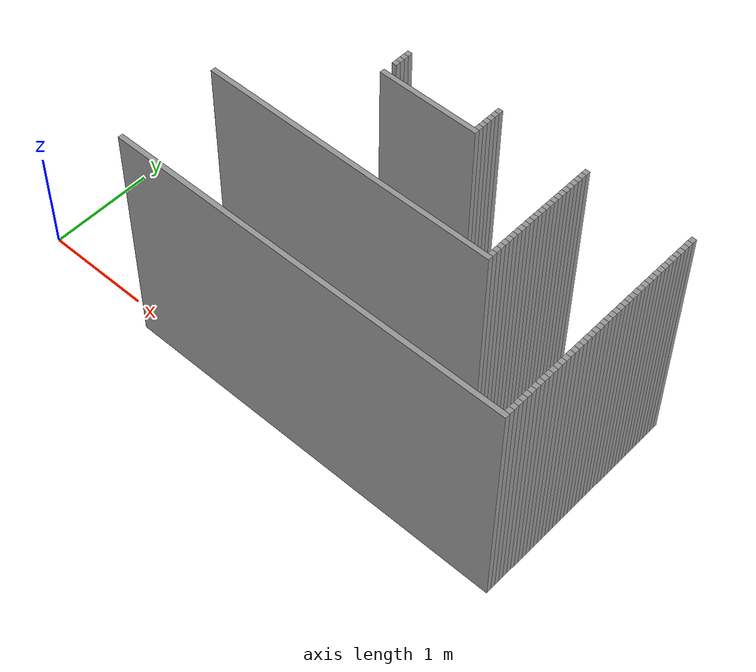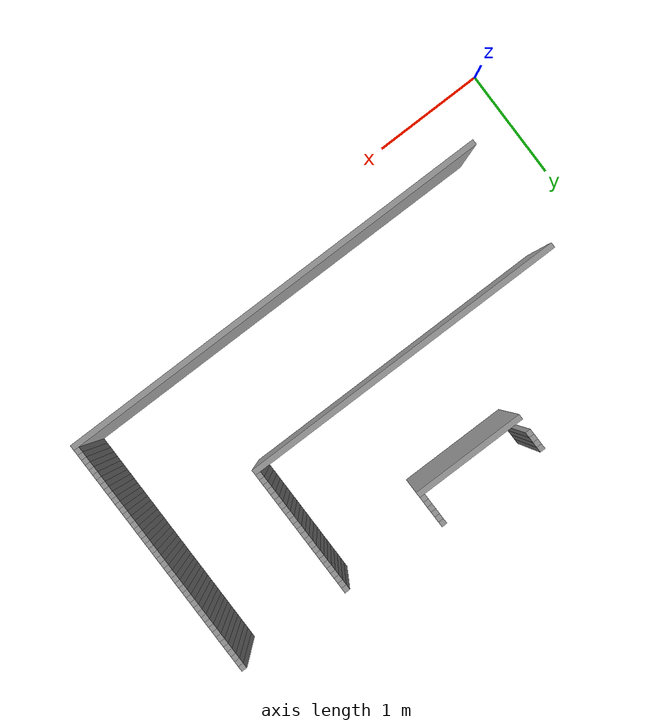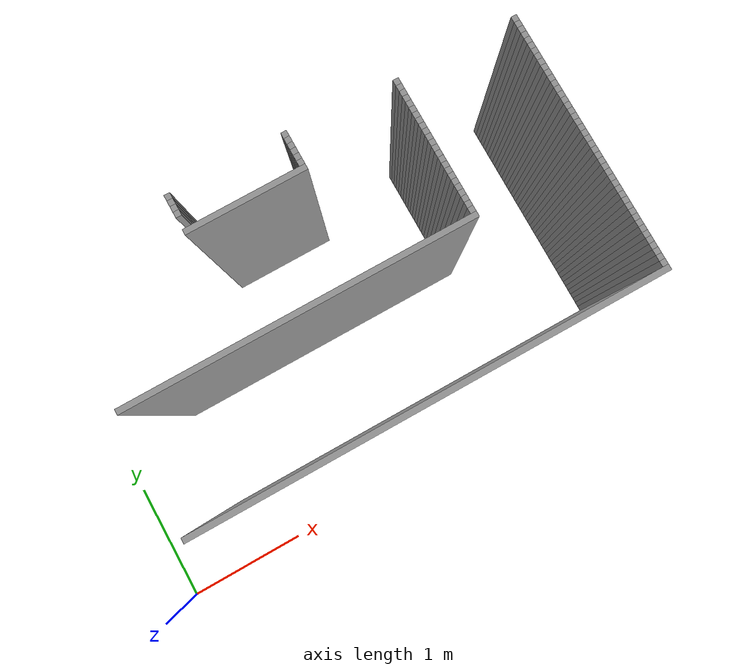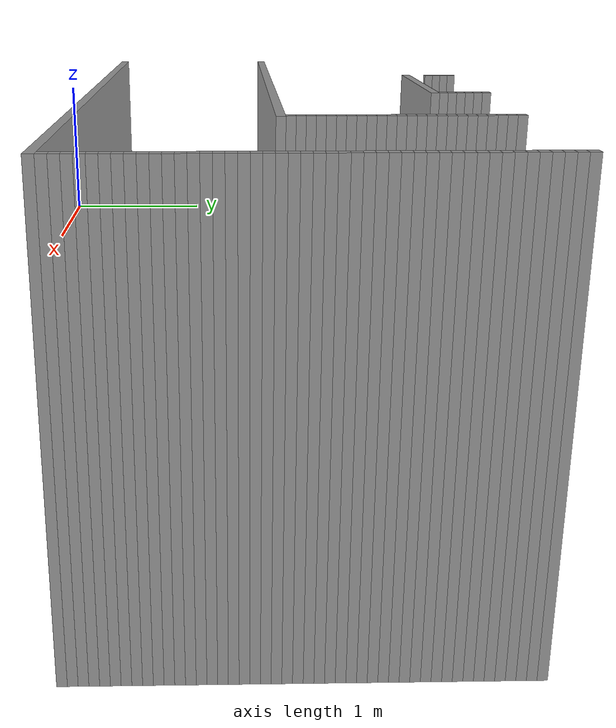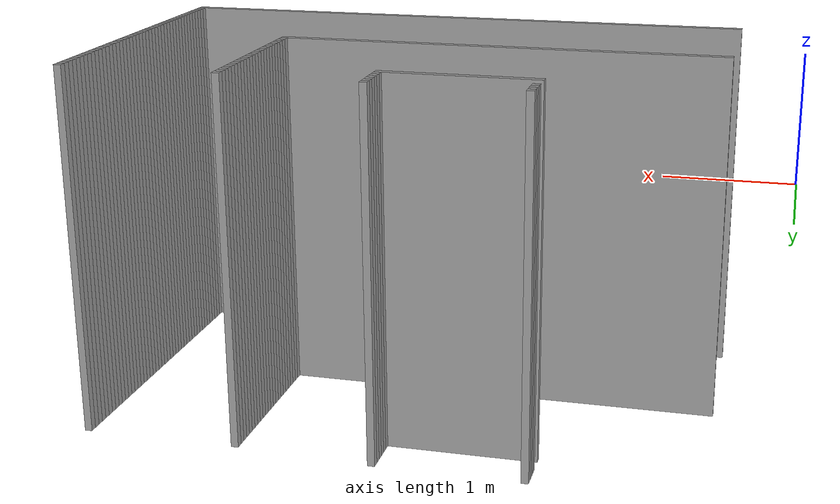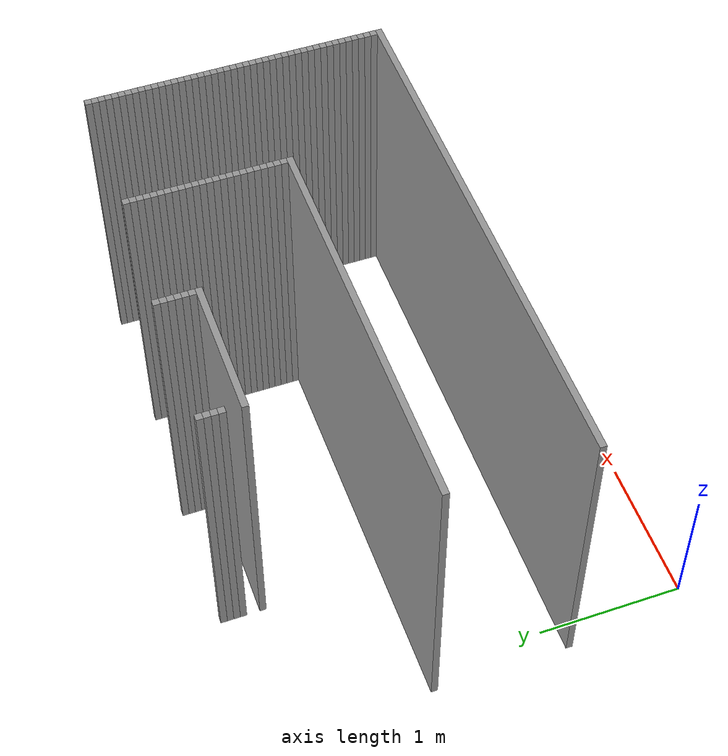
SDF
<sdf version="1.6">
 <model name="turtlebot3_rooms">
  <link name="Wall_0">
   <collision name="Wall_0_Collision"><geometry><box><size>4.1 0.05 2.5</size></box></geometry></collision>
   <visual name="Wall_0_Visual">
    <geometry><box><size>4.1 0.05 2.5</size></box></geometry>
    <material>
     <script><uri>file://media/materials/scripts/gazebo.material</uri><name>Gazebo/Grey</name></script>
     <ambient>1 1 1 1</ambient>
    </material>
   </visual>
   <pose>2.5 0.475 0 0 0 0</pose>
  </link>
  <link name="Wall_2">
   <collision name="Wall_2_Collision"><geometry><box><size>0.05 0.05 2.5</size></box></geometry></collision>
   <visual name="Wall_2_Visual">
    <geometry><box><size>0.05 0.05 2.5</size></box></geometry>
    <material>
     <script><uri>file://media/materials/scripts/gazebo.material</uri><name>Gazebo/Grey</name></script>
     <ambient>1 1 1 1</ambient>
    </material>
   </visual>
   <pose>4.525 0.525 0 0 0 0</pose>
  </link>
  <link name="Wall_4">
   <collision name="Wall_4_Collision"><geometry><box><size>0.05 0.05 2.5</size></box></geometry></collision>
   <visual name="Wall_4_Visual">
    <geometry><box><size>0.05 0.05 2.5</size></box></geometry>
    <material>
     <script><uri>file://media/materials/scripts/gazebo.material</uri><name>Gazebo/Grey</name></script>
     <ambient>1 1 1 1</ambient>
    </material>
   </visual>
   <pose>4.525 0.575 0 0 0 0</pose>
  </link>
  <link name="Wall_6">
   <collision name="Wall_6_Collision"><geometry><box><size>0.05 0.05 2.5</size></box></geometry></collision>
   <visual name="Wall_6_Visual">
    <geometry><box><size>0.05 0.05 2.5</size></box></geometry>
    <material>
     <script><uri>file://media/materials/scripts/gazebo.material</uri><name>Gazebo/Grey</name></script>
     <ambient>1 1 1 1</ambient>
    </material>
   </visual>
   <pose>4.525 0.625 0 0 0 0</pose>
  </link>
  <link name="Wall_8">
   <collision name="Wall_8_Collision"><geometry><box><size>0.05 0.05 2.5</size></box></geometry></collision>
   <visual name="Wall_8_Visual">
    <geometry><box><size>0.05 0.05 2.5</size></box></geometry>
    <material>
     <script><uri>file://media/materials/scripts/gazebo.material</uri><name>Gazebo/Grey</name></script>
     <ambient>1 1 1 1</ambient>
    </material>
   </visual>
   <pose>4.525 0.675 0 0 0 0</pose>
  </link>
  <link name="Wall_10">
   <collision name="Wall_10_Collision"><geometry><box><size>0.05 0.05 2.5</size></box></geometry></collision>
   <visual name="Wall_10_Visual">
    <geometry><box><size>0.05 0.05 2.5</size></box></geometry>
    <material>
     <script><uri>file://media/materials/scripts/gazebo.material</uri><name>Gazebo/Grey</name></script>
     <ambient>1 1 1 1</ambient>
    </material>
   </visual>
   <pose>4.525 0.725 0 0 0 0</pose>
  </link>
  <link name="Wall_12">
   <collision name="Wall_12_Collision"><geometry><box><size>0.05 0.05 2.5</size></box></geometry></collision>
   <visual name="Wall_12_Visual">
    <geometry><box><size>0.05 0.05 2.5</size></box></geometry>
    <material>
     <script><uri>file://media/materials/scripts/gazebo.material</uri><name>Gazebo/Grey</name></script>
     <ambient>1 1 1 1</ambient>
    </material>
   </visual>
   <pose>4.525 0.775 0 0 0 0</pose>
  </link>
  <link name="Wall_14">
   <collision name="Wall_14_Collision"><geometry><box><size>0.05 0.05 2.5</size></box></geometry></collision>
   <visual name="Wall_14_Visual">
    <geometry><box><size>0.05 0.05 2.5</size></box></geometry>
    <material>
     <script><uri>file://media/materials/scripts/gazebo.material</uri><name>Gazebo/Grey</name></script>
     <ambient>1 1 1 1</ambient>
    </material>
   </visual>
   <pose>4.525 0.825 0 0 0 0</pose>
  </link>
  <link name="Wall_16">
   <collision name="Wall_16_Collision"><geometry><box><size>0.05 0.05 2.5</size></box></geometry></collision>
   <visual name="Wall_16_Visual">
    <geometry><box><size>0.05 0.05 2.5</size></box></geometry>
    <material>
     <script><uri>file://media/materials/scripts/gazebo.material</uri><name>Gazebo/Grey</name></script>
     <ambient>1 1 1 1</ambient>
    </material>
   </visual>
   <pose>4.525 0.875 0 0 0 0</pose>
  </link>
  <link name="Wall_18">
   <collision name="Wall_18_Collision"><geometry><box><size>0.05 0.05 2.5</size></box></geometry></collision>
   <visual name="Wall_18_Visual">
    <geometry><box><size>0.05 0.05 2.5</size></box></geometry>
    <material>
     <script><uri>file://media/materials/scripts/gazebo.material</uri><name>Gazebo/Grey</name></script>
     <ambient>1 1 1 1</ambient>
    </material>
   </visual>
   <pose>4.525 0.925 0 0 0 0</pose>
  </link>
  <link name="Wall_20">
   <collision name="Wall_20_Collision"><geometry><box><size>0.05 0.05 2.5</size></box></geometry></collision>
   <visual name="Wall_20_Visual">
    <geometry><box><size>0.05 0.05 2.5</size></box></geometry>
    <material>
     <script><uri>file://media/materials/scripts/gazebo.material</uri><name>Gazebo/Grey</name></script>
     <ambient>1 1 1 1</ambient>
    </material>
   </visual>
   <pose>4.525 0.975 0 0 0 0</pose>
  </link>
  <link name="Wall_22">
   <collision name="Wall_22_Collision"><geometry><box><size>0.05 0.05 2.5</size></box></geometry></collision>
   <visual name="Wall_22_Visual">
    <geometry><box><size>0.05 0.05 2.5</size></box></geometry>
    <material>
     <script><uri>file://media/materials/scripts/gazebo.material</uri><name>Gazebo/Grey</name></script>
     <ambient>1 1 1 1</ambient>
    </material>
   </visual>
   <pose>4.525 1.025 0 0 0 0</pose>
  </link>
  <link name="Wall_24">
   <collision name="Wall_24_Collision"><geometry><box><size>0.05 0.05 2.5</size></box></geometry></collision>
   <visual name="Wall_24_Visual">
    <geometry><box><size>0.05 0.05 2.5</size></box></geometry>
    <material>
     <script><uri>file://media/materials/scripts/gazebo.material</uri><name>Gazebo/Grey</name></script>
     <ambient>1 1 1 1</ambient>
    </material>
   </visual>
   <pose>4.525 1.075 0 0 0 0</pose>
  </link>
  <link name="Wall_26">
   <collision name="Wall_26_Collision"><geometry><box><size>0.05 0.05 2.5</size></box></geometry></collision>
   <visual name="Wall_26_Visual">
    <geometry><box><size>0.05 0.05 2.5</size></box></geometry>
    <material>
     <script><uri>file://media/materials/scripts/gazebo.material</uri><name>Gazebo/Grey</name></script>
     <ambient>1 1 1 1</ambient>
    </material>
   </visual>
   <pose>4.525 1.125 0 0 0 0</pose>
  </link>
  <link name="Wall_28">
   <collision name="Wall_28_Collision"><geometry><box><size>0.05 0.05 2.5</size></box></geometry></collision>
   <visual name="Wall_28_Visual">
    <geometry><box><size>0.05 0.05 2.5</size></box></geometry>
    <material>
     <script><uri>file://media/materials/scripts/gazebo.material</uri><name>Gazebo/Grey</name></script>
     <ambient>1 1 1 1</ambient>
    </material>
   </visual>
   <pose>4.525 1.175 0 0 0 0</pose>
  </link>
  <link name="Wall_30">
   <collision name="Wall_30_Collision"><geometry><box><size>0.05 0.05 2.5</size></box></geometry></collision>
   <visual name="Wall_30_Visual">
    <geometry><box><size>0.05 0.05 2.5</size></box></geometry>
    <material>
     <script><uri>file://media/materials/scripts/gazebo.material</uri><name>Gazebo/Grey</name></script>
     <ambient>1 1 1 1</ambient>
    </material>
   </visual>
   <pose>4.525 1.225 0 0 0 0</pose>
  </link>
  <link name="Wall_32">
   <collision name="Wall_32_Collision"><geometry><box><size>0.05 0.05 2.5</size></box></geometry></collision>
   <visual name="Wall_32_Visual">
    <geometry><box><size>0.05 0.05 2.5</size></box></geometry>
    <material>
     <script><uri>file://media/materials/scripts/gazebo.material</uri><name>Gazebo/Grey</name></script>
     <ambient>1 1 1 1</ambient>
    </material>
   </visual>
   <pose>4.525 1.275 0 0 0 0</pose>
  </link>
  <link name="Wall_34">
   <collision name="Wall_34_Collision"><geometry><box><size>0.05 0.05 2.5</size></box></geometry></collision>
   <visual name="Wall_34_Visual">
    <geometry><box><size>0.05 0.05 2.5</size></box></geometry>
    <material>
     <script><uri>file://media/materials/scripts/gazebo.material</uri><name>Gazebo/Grey</name></script>
     <ambient>1 1 1 1</ambient>
    </material>
   </visual>
   <pose>4.525 1.325 0 0 0 0</pose>
  </link>
  <link name="Wall_36">
   <collision name="Wall_36_Collision"><geometry><box><size>0.05 0.05 2.5</size></box></geometry></collision>
   <visual name="Wall_36_Visual">
    <geometry><box><size>0.05 0.05 2.5</size></box></geometry>
    <material>
     <script><uri>file://media/materials/scripts/gazebo.material</uri><name>Gazebo/Grey</name></script>
     <ambient>1 1 1 1</ambient>
    </material>
   </visual>
   <pose>4.525 1.375 0 0 0 0</pose>
  </link>
  <link name="Wall_38">
   <collision name="Wall_38_Collision"><geometry><box><size>0.05 0.05 2.5</size></box></geometry></collision>
   <visual name="Wall_38_Visual">
    <geometry><box><size>0.05 0.05 2.5</size></box></geometry>
    <material>
     <script><uri>file://media/materials/scripts/gazebo.material</uri><name>Gazebo/Grey</name></script>
     <ambient>1 1 1 1</ambient>
    </material>
   </visual>
   <pose>4.525 1.425 0 0 0 0</pose>
  </link>
  <link name="Wall_40">
   <collision name="Wall_40_Collision"><geometry><box><size>0.05 0.05 2.5</size></box></geometry></collision>
   <visual name="Wall_40_Visual">
    <geometry><box><size>0.05 0.05 2.5</size></box></geometry>
    <material>
     <script><uri>file://media/materials/scripts/gazebo.material</uri><name>Gazebo/Grey</name></script>
     <ambient>1 1 1 1</ambient>
    </material>
   </visual>
   <pose>4.525 1.475 0 0 0 0</pose>
  </link>
  <link name="Wall_41">
   <collision name="Wall_41_Collision"><geometry><box><size>3.05 0.05 2.5</size></box></geometry></collision>
   <visual name="Wall_41_Visual">
    <geometry><box><size>3.05 0.05 2.5</size></box></geometry>
    <material>
     <script><uri>file://media/materials/scripts/gazebo.material</uri><name>Gazebo/Grey</name></script>
     <ambient>1 1 1 1</ambient>
    </material>
   </visual>
   <pose>1.975 1.525 0 0 0 0</pose>
  </link>
  <link name="Wall_42">
   <collision name="Wall_42_Collision"><geometry><box><size>0.05 0.05 2.5</size></box></geometry></collision>
   <visual name="Wall_42_Visual">
    <geometry><box><size>0.05 0.05 2.5</size></box></geometry>
    <material>
     <script><uri>file://media/materials/scripts/gazebo.material</uri><name>Gazebo/Grey</name></script>
     <ambient>1 1 1 1</ambient>
    </material>
   </visual>
   <pose>4.525 1.525 0 0 0 0</pose>
  </link>
  <link name="Wall_44">
   <collision name="Wall_44_Collision"><geometry><box><size>0.05 0.05 2.5</size></box></geometry></collision>
   <visual name="Wall_44_Visual">
    <geometry><box><size>0.05 0.05 2.5</size></box></geometry>
    <material>
     <script><uri>file://media/materials/scripts/gazebo.material</uri><name>Gazebo/Grey</name></script>
     <ambient>1 1 1 1</ambient>
    </material>
   </visual>
   <pose>3.475 1.575 0 0 0 0</pose>
  </link>
  <link name="Wall_45">
   <collision name="Wall_45_Collision"><geometry><box><size>0.05 0.05 2.5</size></box></geometry></collision>
   <visual name="Wall_45_Visual">
    <geometry><box><size>0.05 0.05 2.5</size></box></geometry>
    <material>
     <script><uri>file://media/materials/scripts/gazebo.material</uri><name>Gazebo/Grey</name></script>
     <ambient>1 1 1 1</ambient>
    </material>
   </visual>
   <pose>4.525 1.575 0 0 0 0</pose>
  </link>
  <link name="Wall_47">
   <collision name="Wall_47_Collision"><geometry><box><size>0.05 0.05 2.5</size></box></geometry></collision>
   <visual name="Wall_47_Visual">
    <geometry><box><size>0.05 0.05 2.5</size></box></geometry>
    <material>
     <script><uri>file://media/materials/scripts/gazebo.material</uri><name>Gazebo/Grey</name></script>
     <ambient>1 1 1 1</ambient>
    </material>
   </visual>
   <pose>3.475 1.625 0 0 0 0</pose>
  </link>
  <link name="Wall_48">
   <collision name="Wall_48_Collision"><geometry><box><size>0.05 0.05 2.5</size></box></geometry></collision>
   <visual name="Wall_48_Visual">
    <geometry><box><size>0.05 0.05 2.5</size></box></geometry>
    <material>
     <script><uri>file://media/materials/scripts/gazebo.material</uri><name>Gazebo/Grey</name></script>
     <ambient>1 1 1 1</ambient>
    </material>
   </visual>
   <pose>4.525 1.625 0 0 0 0</pose>
  </link>
  <link name="Wall_50">
   <collision name="Wall_50_Collision"><geometry><box><size>0.05 0.05 2.5</size></box></geometry></collision>
   <visual name="Wall_50_Visual">
    <geometry><box><size>0.05 0.05 2.5</size></box></geometry>
    <material>
     <script><uri>file://media/materials/scripts/gazebo.material</uri><name>Gazebo/Grey</name></script>
     <ambient>1 1 1 1</ambient>
    </material>
   </visual>
   <pose>3.475 1.675 0 0 0 0</pose>
  </link>
  <link name="Wall_51">
   <collision name="Wall_51_Collision"><geometry><box><size>0.05 0.05 2.5</size></box></geometry></collision>
   <visual name="Wall_51_Visual">
    <geometry><box><size>0.05 0.05 2.5</size></box></geometry>
    <material>
     <script><uri>file://media/materials/scripts/gazebo.material</uri><name>Gazebo/Grey</name></script>
     <ambient>1 1 1 1</ambient>
    </material>
   </visual>
   <pose>4.525 1.675 0 0 0 0</pose>
  </link>
  <link name="Wall_53">
   <collision name="Wall_53_Collision"><geometry><box><size>0.05 0.05 2.5</size></box></geometry></collision>
   <visual name="Wall_53_Visual">
    <geometry><box><size>0.05 0.05 2.5</size></box></geometry>
    <material>
     <script><uri>file://media/materials/scripts/gazebo.material</uri><name>Gazebo/Grey</name></script>
     <ambient>1 1 1 1</ambient>
    </material>
   </visual>
   <pose>3.475 1.725 0 0 0 0</pose>
  </link>
  <link name="Wall_54">
   <collision name="Wall_54_Collision"><geometry><box><size>0.05 0.05 2.5</size></box></geometry></collision>
   <visual name="Wall_54_Visual">
    <geometry><box><size>0.05 0.05 2.5</size></box></geometry>
    <material>
     <script><uri>file://media/materials/scripts/gazebo.material</uri><name>Gazebo/Grey</name></script>
     <ambient>1 1 1 1</ambient>
    </material>
   </visual>
   <pose>4.525 1.725 0 0 0 0</pose>
  </link>
  <link name="Wall_56">
   <collision name="Wall_56_Collision"><geometry><box><size>0.05 0.05 2.5</size></box></geometry></collision>
   <visual name="Wall_56_Visual">
    <geometry><box><size>0.05 0.05 2.5</size></box></geometry>
    <material>
     <script><uri>file://media/materials/scripts/gazebo.material</uri><name>Gazebo/Grey</name></script>
     <ambient>1 1 1 1</ambient>
    </material>
   </visual>
   <pose>3.475 1.775 0 0 0 0</pose>
  </link>
  <link name="Wall_57">
   <collision name="Wall_57_Collision"><geometry><box><size>0.05 0.05 2.5</size></box></geometry></collision>
   <visual name="Wall_57_Visual">
    <geometry><box><size>0.05 0.05 2.5</size></box></geometry>
    <material>
     <script><uri>file://media/materials/scripts/gazebo.material</uri><name>Gazebo/Grey</name></script>
     <ambient>1 1 1 1</ambient>
    </material>
   </visual>
   <pose>4.525 1.775 0 0 0 0</pose>
  </link>
  <link name="Wall_59">
   <collision name="Wall_59_Collision"><geometry><box><size>0.05 0.05 2.5</size></box></geometry></collision>
   <visual name="Wall_59_Visual">
    <geometry><box><size>0.05 0.05 2.5</size></box></geometry>
    <material>
     <script><uri>file://media/materials/scripts/gazebo.material</uri><name>Gazebo/Grey</name></script>
     <ambient>1 1 1 1</ambient>
    </material>
   </visual>
   <pose>3.475 1.825 0 0 0 0</pose>
  </link>
  <link name="Wall_60">
   <collision name="Wall_60_Collision"><geometry><box><size>0.05 0.05 2.5</size></box></geometry></collision>
   <visual name="Wall_60_Visual">
    <geometry><box><size>0.05 0.05 2.5</size></box></geometry>
    <material>
     <script><uri>file://media/materials/scripts/gazebo.material</uri><name>Gazebo/Grey</name></script>
     <ambient>1 1 1 1</ambient>
    </material>
   </visual>
   <pose>4.525 1.825 0 0 0 0</pose>
  </link>
  <link name="Wall_62">
   <collision name="Wall_62_Collision"><geometry><box><size>0.05 0.05 2.5</size></box></geometry></collision>
   <visual name="Wall_62_Visual">
    <geometry><box><size>0.05 0.05 2.5</size></box></geometry>
    <material>
     <script><uri>file://media/materials/scripts/gazebo.material</uri><name>Gazebo/Grey</name></script>
     <ambient>1 1 1 1</ambient>
    </material>
   </visual>
   <pose>3.475 1.875 0 0 0 0</pose>
  </link>
  <link name="Wall_63">
   <collision name="Wall_63_Collision"><geometry><box><size>0.05 0.05 2.5</size></box></geometry></collision>
   <visual name="Wall_63_Visual">
    <geometry><box><size>0.05 0.05 2.5</size></box></geometry>
    <material>
     <script><uri>file://media/materials/scripts/gazebo.material</uri><name>Gazebo/Grey</name></script>
     <ambient>1 1 1 1</ambient>
    </material>
   </visual>
   <pose>4.525 1.875 0 0 0 0</pose>
  </link>
  <link name="Wall_65">
   <collision name="Wall_65_Collision"><geometry><box><size>0.05 0.05 2.5</size></box></geometry></collision>
   <visual name="Wall_65_Visual">
    <geometry><box><size>0.05 0.05 2.5</size></box></geometry>
    <material>
     <script><uri>file://media/materials/scripts/gazebo.material</uri><name>Gazebo/Grey</name></script>
     <ambient>1 1 1 1</ambient>
    </material>
   </visual>
   <pose>3.475 1.925 0 0 0 0</pose>
  </link>
  <link name="Wall_66">
   <collision name="Wall_66_Collision"><geometry><box><size>0.05 0.05 2.5</size></box></geometry></collision>
   <visual name="Wall_66_Visual">
    <geometry><box><size>0.05 0.05 2.5</size></box></geometry>
    <material>
     <script><uri>file://media/materials/scripts/gazebo.material</uri><name>Gazebo/Grey</name></script>
     <ambient>1 1 1 1</ambient>
    </material>
   </visual>
   <pose>4.525 1.925 0 0 0 0</pose>
  </link>
  <link name="Wall_68">
   <collision name="Wall_68_Collision"><geometry><box><size>0.05 0.05 2.5</size></box></geometry></collision>
   <visual name="Wall_68_Visual">
    <geometry><box><size>0.05 0.05 2.5</size></box></geometry>
    <material>
     <script><uri>file://media/materials/scripts/gazebo.material</uri><name>Gazebo/Grey</name></script>
     <ambient>1 1 1 1</ambient>
    </material>
   </visual>
   <pose>3.475 1.975 0 0 0 0</pose>
  </link>
  <link name="Wall_69">
   <collision name="Wall_69_Collision"><geometry><box><size>0.05 0.05 2.5</size></box></geometry></collision>
   <visual name="Wall_69_Visual">
    <geometry><box><size>0.05 0.05 2.5</size></box></geometry>
    <material>
     <script><uri>file://media/materials/scripts/gazebo.material</uri><name>Gazebo/Grey</name></script>
     <ambient>1 1 1 1</ambient>
    </material>
   </visual>
   <pose>4.525 1.975 0 0 0 0</pose>
  </link>
  <link name="Wall_71">
   <collision name="Wall_71_Collision"><geometry><box><size>0.05 0.05 2.5</size></box></geometry></collision>
   <visual name="Wall_71_Visual">
    <geometry><box><size>0.05 0.05 2.5</size></box></geometry>
    <material>
     <script><uri>file://media/materials/scripts/gazebo.material</uri><name>Gazebo/Grey</name></script>
     <ambient>1 1 1 1</ambient>
    </material>
   </visual>
   <pose>3.475 2.025 0 0 0 0</pose>
  </link>
  <link name="Wall_72">
   <collision name="Wall_72_Collision"><geometry><box><size>0.05 0.05 2.5</size></box></geometry></collision>
   <visual name="Wall_72_Visual">
    <geometry><box><size>0.05 0.05 2.5</size></box></geometry>
    <material>
     <script><uri>file://media/materials/scripts/gazebo.material</uri><name>Gazebo/Grey</name></script>
     <ambient>1 1 1 1</ambient>
    </material>
   </visual>
   <pose>4.525 2.025 0 0 0 0</pose>
  </link>
  <link name="Wall_74">
   <collision name="Wall_74_Collision"><geometry><box><size>0.05 0.05 2.5</size></box></geometry></collision>
   <visual name="Wall_74_Visual">
    <geometry><box><size>0.05 0.05 2.5</size></box></geometry>
    <material>
     <script><uri>file://media/materials/scripts/gazebo.material</uri><name>Gazebo/Grey</name></script>
     <ambient>1 1 1 1</ambient>
    </material>
   </visual>
   <pose>3.475 2.075 0 0 0 0</pose>
  </link>
  <link name="Wall_75">
   <collision name="Wall_75_Collision"><geometry><box><size>0.05 0.05 2.5</size></box></geometry></collision>
   <visual name="Wall_75_Visual">
    <geometry><box><size>0.05 0.05 2.5</size></box></geometry>
    <material>
     <script><uri>file://media/materials/scripts/gazebo.material</uri><name>Gazebo/Grey</name></script>
     <ambient>1 1 1 1</ambient>
    </material>
   </visual>
   <pose>4.525 2.075 0 0 0 0</pose>
  </link>
  <link name="Wall_77">
   <collision name="Wall_77_Collision"><geometry><box><size>0.05 0.05 2.5</size></box></geometry></collision>
   <visual name="Wall_77_Visual">
    <geometry><box><size>0.05 0.05 2.5</size></box></geometry>
    <material>
     <script><uri>file://media/materials/scripts/gazebo.material</uri><name>Gazebo/Grey</name></script>
     <ambient>1 1 1 1</ambient>
    </material>
   </visual>
   <pose>3.475 2.125 0 0 0 0</pose>
  </link>
  <link name="Wall_78">
   <collision name="Wall_78_Collision"><geometry><box><size>0.05 0.05 2.5</size></box></geometry></collision>
   <visual name="Wall_78_Visual">
    <geometry><box><size>0.05 0.05 2.5</size></box></geometry>
    <material>
     <script><uri>file://media/materials/scripts/gazebo.material</uri><name>Gazebo/Grey</name></script>
     <ambient>1 1 1 1</ambient>
    </material>
   </visual>
   <pose>4.525 2.125 0 0 0 0</pose>
  </link>
  <link name="Wall_80">
   <collision name="Wall_80_Collision"><geometry><box><size>0.05 0.05 2.5</size></box></geometry></collision>
   <visual name="Wall_80_Visual">
    <geometry><box><size>0.05 0.05 2.5</size></box></geometry>
    <material>
     <script><uri>file://media/materials/scripts/gazebo.material</uri><name>Gazebo/Grey</name></script>
     <ambient>1 1 1 1</ambient>
    </material>
   </visual>
   <pose>3.475 2.175 0 0 0 0</pose>
  </link>
  <link name="Wall_81">
   <collision name="Wall_81_Collision"><geometry><box><size>0.05 0.05 2.5</size></box></geometry></collision>
   <visual name="Wall_81_Visual">
    <geometry><box><size>0.05 0.05 2.5</size></box></geometry>
    <material>
     <script><uri>file://media/materials/scripts/gazebo.material</uri><name>Gazebo/Grey</name></script>
     <ambient>1 1 1 1</ambient>
    </material>
   </visual>
   <pose>4.525 2.175 0 0 0 0</pose>
  </link>
  <link name="Wall_83">
   <collision name="Wall_83_Collision"><geometry><box><size>0.05 0.05 2.5</size></box></geometry></collision>
   <visual name="Wall_83_Visual">
    <geometry><box><size>0.05 0.05 2.5</size></box></geometry>
    <material>
     <script><uri>file://media/materials/scripts/gazebo.material</uri><name>Gazebo/Grey</name></script>
     <ambient>1 1 1 1</ambient>
    </material>
   </visual>
   <pose>3.475 2.225 0 0 0 0</pose>
  </link>
  <link name="Wall_84">
   <collision name="Wall_84_Collision"><geometry><box><size>0.05 0.05 2.5</size></box></geometry></collision>
   <visual name="Wall_84_Visual">
    <geometry><box><size>0.05 0.05 2.5</size></box></geometry>
    <material>
     <script><uri>file://media/materials/scripts/gazebo.material</uri><name>Gazebo/Grey</name></script>
     <ambient>1 1 1 1</ambient>
    </material>
   </visual>
   <pose>4.525 2.225 0 0 0 0</pose>
  </link>
  <link name="Wall_86">
   <collision name="Wall_86_Collision"><geometry><box><size>0.05 0.05 2.5</size></box></geometry></collision>
   <visual name="Wall_86_Visual">
    <geometry><box><size>0.05 0.05 2.5</size></box></geometry>
    <material>
     <script><uri>file://media/materials/scripts/gazebo.material</uri><name>Gazebo/Grey</name></script>
     <ambient>1 1 1 1</ambient>
    </material>
   </visual>
   <pose>3.475 2.275 0 0 0 0</pose>
  </link>
  <link name="Wall_87">
   <collision name="Wall_87_Collision"><geometry><box><size>0.05 0.05 2.5</size></box></geometry></collision>
   <visual name="Wall_87_Visual">
    <geometry><box><size>0.05 0.05 2.5</size></box></geometry>
    <material>
     <script><uri>file://media/materials/scripts/gazebo.material</uri><name>Gazebo/Grey</name></script>
     <ambient>1 1 1 1</ambient>
    </material>
   </visual>
   <pose>4.525 2.275 0 0 0 0</pose>
  </link>
  <link name="Wall_89">
   <collision name="Wall_89_Collision"><geometry><box><size>0.05 0.05 2.5</size></box></geometry></collision>
   <visual name="Wall_89_Visual">
    <geometry><box><size>0.05 0.05 2.5</size></box></geometry>
    <material>
     <script><uri>file://media/materials/scripts/gazebo.material</uri><name>Gazebo/Grey</name></script>
     <ambient>1 1 1 1</ambient>
    </material>
   </visual>
   <pose>3.475 2.325 0 0 0 0</pose>
  </link>
  <link name="Wall_90">
   <collision name="Wall_90_Collision"><geometry><box><size>0.05 0.05 2.5</size></box></geometry></collision>
   <visual name="Wall_90_Visual">
    <geometry><box><size>0.05 0.05 2.5</size></box></geometry>
    <material>
     <script><uri>file://media/materials/scripts/gazebo.material</uri><name>Gazebo/Grey</name></script>
     <ambient>1 1 1 1</ambient>
    </material>
   </visual>
   <pose>4.525 2.325 0 0 0 0</pose>
  </link>
  <link name="Wall_92">
   <collision name="Wall_92_Collision"><geometry><box><size>0.05 0.05 2.5</size></box></geometry></collision>
   <visual name="Wall_92_Visual">
    <geometry><box><size>0.05 0.05 2.5</size></box></geometry>
    <material>
     <script><uri>file://media/materials/scripts/gazebo.material</uri><name>Gazebo/Grey</name></script>
     <ambient>1 1 1 1</ambient>
    </material>
   </visual>
   <pose>3.475 2.375 0 0 0 0</pose>
  </link>
  <link name="Wall_93">
   <collision name="Wall_93_Collision"><geometry><box><size>0.05 0.05 2.5</size></box></geometry></collision>
   <visual name="Wall_93_Visual">
    <geometry><box><size>0.05 0.05 2.5</size></box></geometry>
    <material>
     <script><uri>file://media/materials/scripts/gazebo.material</uri><name>Gazebo/Grey</name></script>
     <ambient>1 1 1 1</ambient>
    </material>
   </visual>
   <pose>4.525 2.375 0 0 0 0</pose>
  </link>
  <link name="Wall_95">
   <collision name="Wall_95_Collision"><geometry><box><size>0.05 0.05 2.5</size></box></geometry></collision>
   <visual name="Wall_95_Visual">
    <geometry><box><size>0.05 0.05 2.5</size></box></geometry>
    <material>
     <script><uri>file://media/materials/scripts/gazebo.material</uri><name>Gazebo/Grey</name></script>
     <ambient>1 1 1 1</ambient>
    </material>
   </visual>
   <pose>3.475 2.425 0 0 0 0</pose>
  </link>
  <link name="Wall_96">
   <collision name="Wall_96_Collision"><geometry><box><size>0.05 0.05 2.5</size></box></geometry></collision>
   <visual name="Wall_96_Visual">
    <geometry><box><size>0.05 0.05 2.5</size></box></geometry>
    <material>
     <script><uri>file://media/materials/scripts/gazebo.material</uri><name>Gazebo/Grey</name></script>
     <ambient>1 1 1 1</ambient>
    </material>
   </visual>
   <pose>4.525 2.425 0 0 0 0</pose>
  </link>
  <link name="Wall_98">
   <collision name="Wall_98_Collision"><geometry><box><size>1.05 0.05 2.5</size></box></geometry></collision>
   <visual name="Wall_98_Visual">
    <geometry><box><size>1.05 0.05 2.5</size></box></geometry>
    <material>
     <script><uri>file://media/materials/scripts/gazebo.material</uri><name>Gazebo/Grey</name></script>
     <ambient>1 1 1 1</ambient>
    </material>
   </visual>
   <pose>2.025 2.475 0 0 0 0</pose>
  </link>
  <link name="Wall_99">
   <collision name="Wall_99_Collision"><geometry><box><size>0.05 0.05 2.5</size></box></geometry></collision>
   <visual name="Wall_99_Visual">
    <geometry><box><size>0.05 0.05 2.5</size></box></geometry>
    <material>
     <script><uri>file://media/materials/scripts/gazebo.material</uri><name>Gazebo/Grey</name></script>
     <ambient>1 1 1 1</ambient>
    </material>
   </visual>
   <pose>3.475 2.475 0 0 0 0</pose>
  </link>
  <link name="Wall_100">
   <collision name="Wall_100_Collision"><geometry><box><size>0.05 0.05 2.5</size></box></geometry></collision>
   <visual name="Wall_100_Visual">
    <geometry><box><size>0.05 0.05 2.5</size></box></geometry>
    <material>
     <script><uri>file://media/materials/scripts/gazebo.material</uri><name>Gazebo/Grey</name></script>
     <ambient>1 1 1 1</ambient>
    </material>
   </visual>
   <pose>4.525 2.475 0 0 0 0</pose>
  </link>
  <link name="Wall_103">
   <collision name="Wall_103_Collision"><geometry><box><size>0.05 0.05 2.5</size></box></geometry></collision>
   <visual name="Wall_103_Visual">
    <geometry><box><size>0.05 0.05 2.5</size></box></geometry>
    <material>
     <script><uri>file://media/materials/scripts/gazebo.material</uri><name>Gazebo/Grey</name></script>
     <ambient>1 1 1 1</ambient>
    </material>
   </visual>
   <pose>2.525 2.525 0 0 0 0</pose>
  </link>
  <link name="Wall_104">
   <collision name="Wall_104_Collision"><geometry><box><size>0.05 0.05 2.5</size></box></geometry></collision>
   <visual name="Wall_104_Visual">
    <geometry><box><size>0.05 0.05 2.5</size></box></geometry>
    <material>
     <script><uri>file://media/materials/scripts/gazebo.material</uri><name>Gazebo/Grey</name></script>
     <ambient>1 1 1 1</ambient>
    </material>
   </visual>
   <pose>3.475 2.525 0 0 0 0</pose>
  </link>
  <link name="Wall_105">
   <collision name="Wall_105_Collision"><geometry><box><size>0.05 0.05 2.5</size></box></geometry></collision>
   <visual name="Wall_105_Visual">
    <geometry><box><size>0.05 0.05 2.5</size></box></geometry>
    <material>
     <script><uri>file://media/materials/scripts/gazebo.material</uri><name>Gazebo/Grey</name></script>
     <ambient>1 1 1 1</ambient>
    </material>
   </visual>
   <pose>4.525 2.525 0 0 0 0</pose>
  </link>
  <link name="Wall_108">
   <collision name="Wall_108_Collision"><geometry><box><size>0.05 0.05 2.5</size></box></geometry></collision>
   <visual name="Wall_108_Visual">
    <geometry><box><size>0.05 0.05 2.5</size></box></geometry>
    <material>
     <script><uri>file://media/materials/scripts/gazebo.material</uri><name>Gazebo/Grey</name></script>
     <ambient>1 1 1 1</ambient>
    </material>
   </visual>
   <pose>2.525 2.575 0 0 0 0</pose>
  </link>
  <link name="Wall_109">
   <collision name="Wall_109_Collision"><geometry><box><size>0.05 0.05 2.5</size></box></geometry></collision>
   <visual name="Wall_109_Visual">
    <geometry><box><size>0.05 0.05 2.5</size></box></geometry>
    <material>
     <script><uri>file://media/materials/scripts/gazebo.material</uri><name>Gazebo/Grey</name></script>
     <ambient>1 1 1 1</ambient>
    </material>
   </visual>
   <pose>3.475 2.575 0 0 0 0</pose>
  </link>
  <link name="Wall_110">
   <collision name="Wall_110_Collision"><geometry><box><size>0.05 0.05 2.5</size></box></geometry></collision>
   <visual name="Wall_110_Visual">
    <geometry><box><size>0.05 0.05 2.5</size></box></geometry>
    <material>
     <script><uri>file://media/materials/scripts/gazebo.material</uri><name>Gazebo/Grey</name></script>
     <ambient>1 1 1 1</ambient>
    </material>
   </visual>
   <pose>4.525 2.575 0 0 0 0</pose>
  </link>
  <link name="Wall_112">
   <collision name="Wall_112_Collision"><geometry><box><size>0.05 0.05 2.5</size></box></geometry></collision>
   <visual name="Wall_112_Visual">
    <geometry><box><size>0.05 0.05 2.5</size></box></geometry>
    <material>
     <script><uri>file://media/materials/scripts/gazebo.material</uri><name>Gazebo/Grey</name></script>
     <ambient>1 1 1 1</ambient>
    </material>
   </visual>
   <pose>1.525 2.625 0 0 0 0</pose>
  </link>
  <link name="Wall_113">
   <collision name="Wall_113_Collision"><geometry><box><size>0.05 0.05 2.5</size></box></geometry></collision>
   <visual name="Wall_113_Visual">
    <geometry><box><size>0.05 0.05 2.5</size></box></geometry>
    <material>
     <script><uri>file://media/materials/scripts/gazebo.material</uri><name>Gazebo/Grey</name></script>
     <ambient>1 1 1 1</ambient>
    </material>
   </visual>
   <pose>2.525 2.625 0 0 0 0</pose>
  </link>
  <link name="Wall_114">
   <collision name="Wall_114_Collision"><geometry><box><size>0.05 0.05 2.5</size></box></geometry></collision>
   <visual name="Wall_114_Visual">
    <geometry><box><size>0.05 0.05 2.5</size></box></geometry>
    <material>
     <script><uri>file://media/materials/scripts/gazebo.material</uri><name>Gazebo/Grey</name></script>
     <ambient>1 1 1 1</ambient>
    </material>
   </visual>
   <pose>3.475 2.625 0 0 0 0</pose>
  </link>
  <link name="Wall_115">
   <collision name="Wall_115_Collision"><geometry><box><size>0.05 0.05 2.5</size></box></geometry></collision>
   <visual name="Wall_115_Visual">
    <geometry><box><size>0.05 0.05 2.5</size></box></geometry>
    <material>
     <script><uri>file://media/materials/scripts/gazebo.material</uri><name>Gazebo/Grey</name></script>
     <ambient>1 1 1 1</ambient>
    </material>
   </visual>
   <pose>4.525 2.625 0 0 0 0</pose>
  </link>
  <link name="Wall_117">
   <collision name="Wall_117_Collision"><geometry><box><size>0.05 0.05 2.5</size></box></geometry></collision>
   <visual name="Wall_117_Visual">
    <geometry><box><size>0.05 0.05 2.5</size></box></geometry>
    <material>
     <script><uri>file://media/materials/scripts/gazebo.material</uri><name>Gazebo/Grey</name></script>
     <ambient>1 1 1 1</ambient>
    </material>
   </visual>
   <pose>1.525 2.675 0 0 0 0</pose>
  </link>
  <link name="Wall_118">
   <collision name="Wall_118_Collision"><geometry><box><size>0.05 0.05 2.5</size></box></geometry></collision>
   <visual name="Wall_118_Visual">
    <geometry><box><size>0.05 0.05 2.5</size></box></geometry>
    <material>
     <script><uri>file://media/materials/scripts/gazebo.material</uri><name>Gazebo/Grey</name></script>
     <ambient>1 1 1 1</ambient>
    </material>
   </visual>
   <pose>2.525 2.675 0 0 0 0</pose>
  </link>
  <link name="Wall_119">
   <collision name="Wall_119_Collision"><geometry><box><size>0.05 0.05 2.5</size></box></geometry></collision>
   <visual name="Wall_119_Visual">
    <geometry><box><size>0.05 0.05 2.5</size></box></geometry>
    <material>
     <script><uri>file://media/materials/scripts/gazebo.material</uri><name>Gazebo/Grey</name></script>
     <ambient>1 1 1 1</ambient>
    </material>
   </visual>
   <pose>3.475 2.675 0 0 0 0</pose>
  </link>
  <link name="Wall_120">
   <collision name="Wall_120_Collision"><geometry><box><size>0.05 0.05 2.5</size></box></geometry></collision>
   <visual name="Wall_120_Visual">
    <geometry><box><size>0.05 0.05 2.5</size></box></geometry>
    <material>
     <script><uri>file://media/materials/scripts/gazebo.material</uri><name>Gazebo/Grey</name></script>
     <ambient>1 1 1 1</ambient>
    </material>
   </visual>
   <pose>4.525 2.675 0 0 0 0</pose>
  </link>
  <link name="Wall_122">
   <collision name="Wall_122_Collision"><geometry><box><size>0.05 0.05 2.5</size></box></geometry></collision>
   <visual name="Wall_122_Visual">
    <geometry><box><size>0.05 0.05 2.5</size></box></geometry>
    <material>
     <script><uri>file://media/materials/scripts/gazebo.material</uri><name>Gazebo/Grey</name></script>
     <ambient>1 1 1 1</ambient>
    </material>
   </visual>
   <pose>1.525 2.725 0 0 0 0</pose>
  </link>
  <link name="Wall_123">
   <collision name="Wall_123_Collision"><geometry><box><size>0.05 0.05 2.5</size></box></geometry></collision>
   <visual name="Wall_123_Visual">
    <geometry><box><size>0.05 0.05 2.5</size></box></geometry>
    <material>
     <script><uri>file://media/materials/scripts/gazebo.material</uri><name>Gazebo/Grey</name></script>
     <ambient>1 1 1 1</ambient>
    </material>
   </visual>
   <pose>2.525 2.725 0 0 0 0</pose>
  </link>
  <link name="Wall_124">
   <collision name="Wall_124_Collision"><geometry><box><size>0.05 0.05 2.5</size></box></geometry></collision>
   <visual name="Wall_124_Visual">
    <geometry><box><size>0.05 0.05 2.5</size></box></geometry>
    <material>
     <script><uri>file://media/materials/scripts/gazebo.material</uri><name>Gazebo/Grey</name></script>
     <ambient>1 1 1 1</ambient>
    </material>
   </visual>
   <pose>3.475 2.725 0 0 0 0</pose>
  </link>
  <link name="Wall_125">
   <collision name="Wall_125_Collision"><geometry><box><size>0.05 0.05 2.5</size></box></geometry></collision>
   <visual name="Wall_125_Visual">
    <geometry><box><size>0.05 0.05 2.5</size></box></geometry>
    <material>
     <script><uri>file://media/materials/scripts/gazebo.material</uri><name>Gazebo/Grey</name></script>
     <ambient>1 1 1 1</ambient>
    </material>
   </visual>
   <pose>4.525 2.725 0 0 0 0</pose>
  </link>
  <link name="Wall_127">
   <collision name="Wall_127_Collision"><geometry><box><size>0.05 0.05 2.5</size></box></geometry></collision>
   <visual name="Wall_127_Visual">
    <geometry><box><size>0.05 0.05 2.5</size></box></geometry>
    <material>
     <script><uri>file://media/materials/scripts/gazebo.material</uri><name>Gazebo/Grey</name></script>
     <ambient>1 1 1 1</ambient>
    </material>
   </visual>
   <pose>1.525 2.775 0 0 0 0</pose>
  </link>
  <link name="Wall_128">
   <collision name="Wall_128_Collision"><geometry><box><size>0.05 0.05 2.5</size></box></geometry></collision>
   <visual name="Wall_128_Visual">
    <geometry><box><size>0.05 0.05 2.5</size></box></geometry>
    <material>
     <script><uri>file://media/materials/scripts/gazebo.material</uri><name>Gazebo/Grey</name></script>
     <ambient>1 1 1 1</ambient>
    </material>
   </visual>
   <pose>2.525 2.775 0 0 0 0</pose>
  </link>
  <static>1</static>
 </model>
</sdf>
